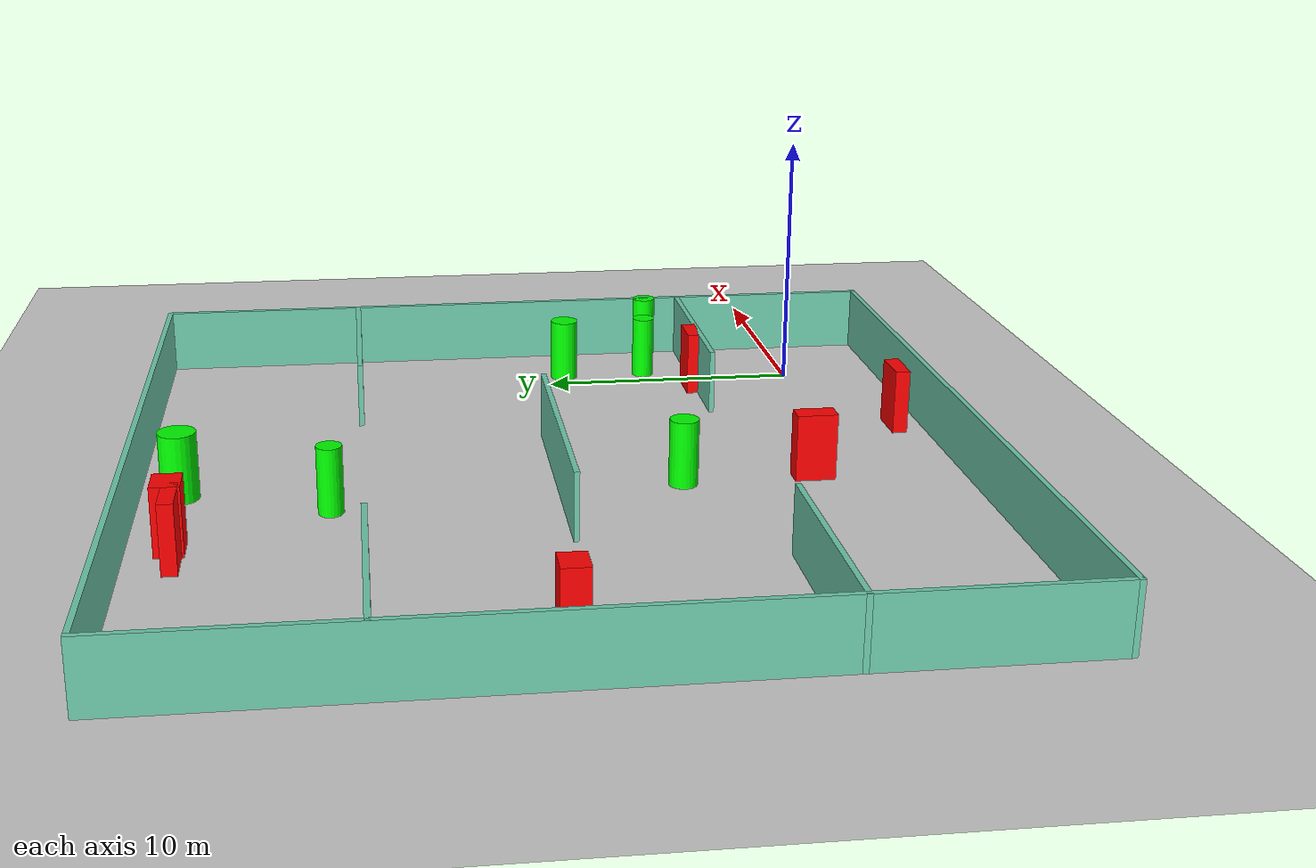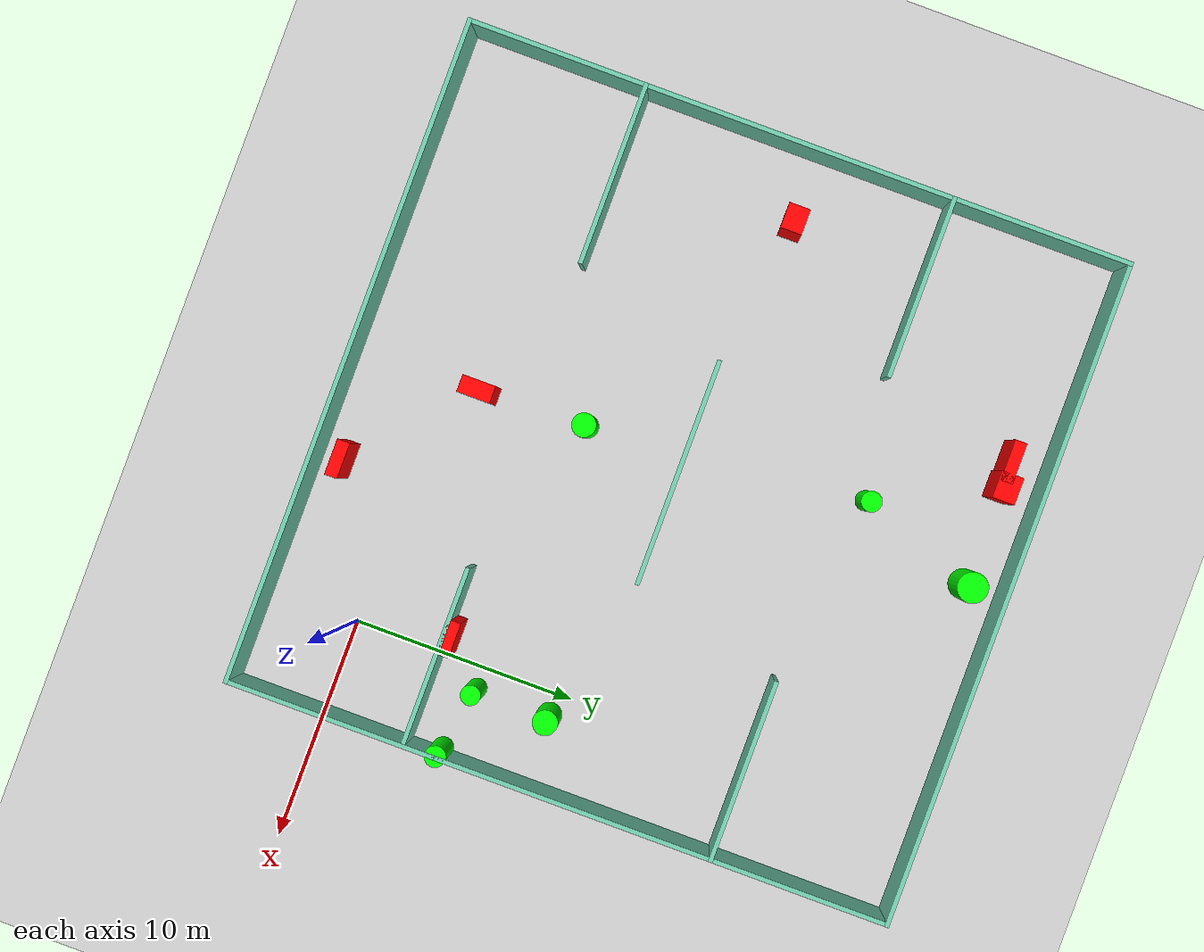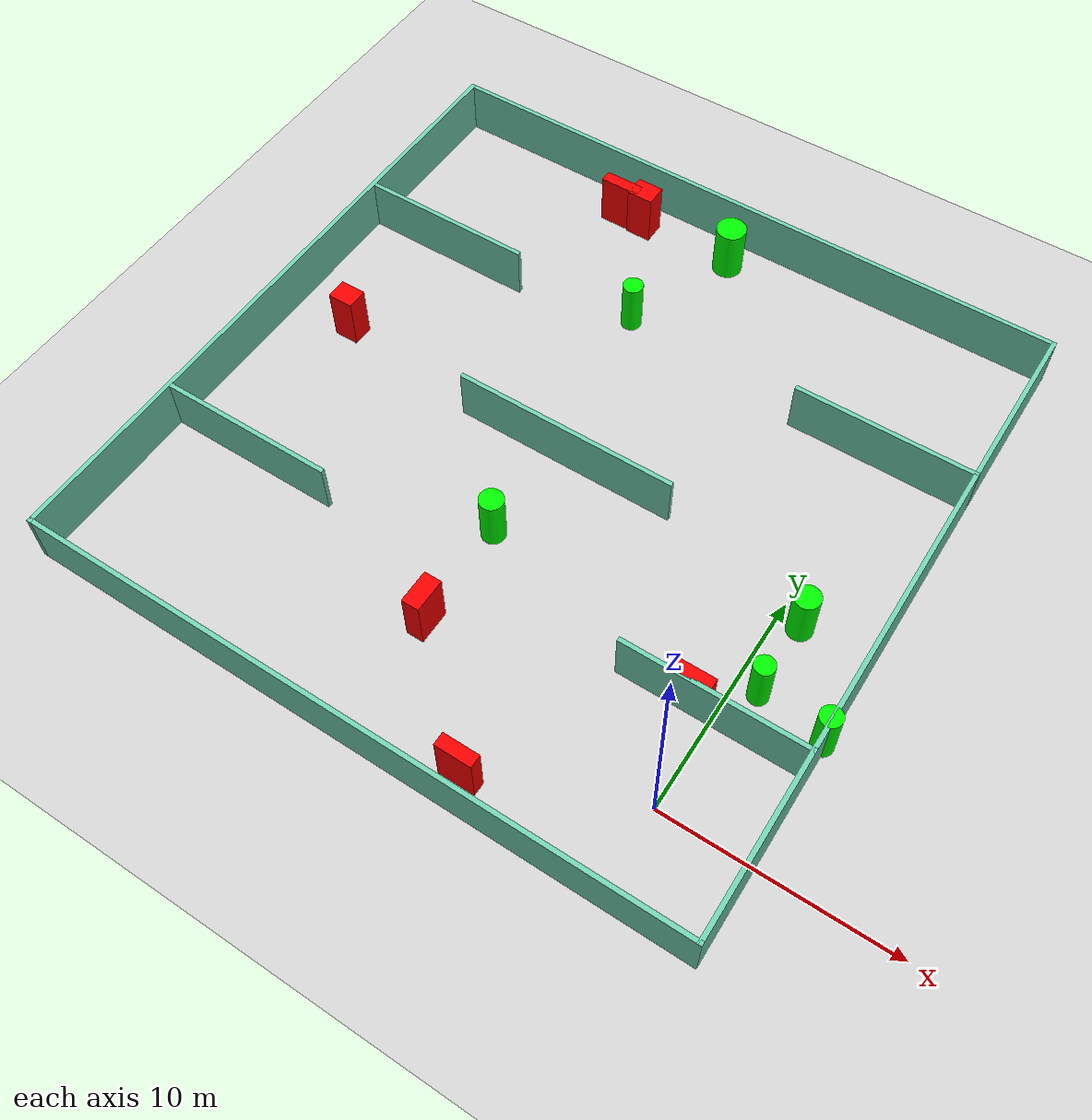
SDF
<sdf version="1.7">
 <world name="default">
  <light name="sun" type="directional">
   <pose>0 0 10 0 -0 0</pose>
   <diffuse>0.8 0.8 0.8 1</diffuse>
   <specular>0.2 0.2 0.2 1</specular>
   <attenuation>
    <range>1000</range>
    <constant>0.9</constant>
    <linear>0.01</linear>
    <quadratic>0.001</quadratic>
   </attenuation>
   <direction>-0.5 0.1 -0.9</direction>
   <spot><inner_angle>0</inner_angle><outer_angle>0</outer_angle><falloff>0</falloff></spot>
  </light>
  <model name="ground_plane">
   <static>1</static>
   <link name="link">
    <collision name="collision">
     <geometry><plane><normal>0 0 1</normal><size>100 100</size></plane></geometry>
     <surface>
      <contact><collide_bitmask>65535</collide_bitmask></contact>
      <friction><ode><mu>100</mu><mu2>50</mu2></ode></friction>
     </surface>
    </collision>
    <visual name="visual">
     <cast_shadows>0</cast_shadows>
     <geometry><plane><normal>0 0 1</normal><size>100 100</size></plane></geometry>
     <material>
      <script><uri>file://media/materials/scripts/gazebo.material</uri><name>Gazebo/Grey</name></script>
     </material>
    </visual>
   </link>
  </model>
  <gravity>0 0 -9.8</gravity>
  <magnetic_field>6e-06 2.3e-05 -4.2e-05</magnetic_field>
  <atmosphere type="adiabatic"/>
  <physics type="ode">
   <max_step_size>0.001</max_step_size>
   <real_time_factor>1</real_time_factor>
   <real_time_update_rate>1000</real_time_update_rate>
  </physics>
  <scene><ambient>0.4 0.4 0.4 1</ambient><background>0.7 0.7 0.7 1</background><shadows>1</shadows></scene>
  <spherical_coordinates>
   <surface_model>EARTH_WGS84</surface_model>
   <latitude_deg>0</latitude_deg>
   <longitude_deg>0</longitude_deg>
   <elevation>0</elevation>
   <heading_deg>0</heading_deg>
  </spherical_coordinates>
  <model name="my_base_walls">
   <link name="Wall_10">
    <collision name="Wall_10_Collision">
     <geometry><box><size>8.2 0.2 2.5</size></box></geometry>
     <pose>0 0 1.25 0 -0 0</pose>
    </collision>
    <visual name="Wall_10_Visual">
     <pose>0 0 1.25 0 -0 0</pose>
     <geometry><box><size>8.2 0.2 2.5</size></box></geometry>
     <material>
      <script><uri>file://media/materials/scripts/gazebo.material</uri><name>Gazebo/Grey</name></script>
      <ambient>0.435294 0.796078 0.67451 1</ambient>
     </material>
     <meta><layer>0</layer></meta>
    </visual>
    <pose>-11 -7 0 0 -0 0</pose>
   </link>
   <link name="Wall_12">
    <collision name="Wall_12_Collision">
     <geometry><box><size>8.2 0.2 2.5</size></box></geometry>
     <pose>0 0 1.25 0 -0 0</pose>
    </collision>
    <visual name="Wall_12_Visual">
     <pose>0 0 1.25 0 -0 0</pose>
     <geometry><box><size>8.2 0.2 2.5</size></box></geometry>
     <material>
      <script><uri>file://media/materials/scripts/gazebo.material</uri><name>Gazebo/Grey</name></script>
      <ambient>0.435294 0.796078 0.67451 1</ambient>
     </material>
     <meta><layer>0</layer></meta>
    </visual>
    <pose>-11 7 0 0 -0 0</pose>
   </link>
   <link name="Wall_14">
    <collision name="Wall_14_Collision">
     <geometry><box><size>8.2 0.2 2.5</size></box></geometry>
     <pose>0 0 1.25 0 -0 0</pose>
    </collision>
    <visual name="Wall_14_Visual">
     <pose>0 0 1.25 0 -0 0</pose>
     <geometry><box><size>8.2 0.2 2.5</size></box></geometry>
     <material>
      <script><uri>file://media/materials/scripts/gazebo.material</uri><name>Gazebo/Grey</name></script>
      <ambient>0.435294 0.796078 0.67451 1</ambient>
     </material>
     <meta><layer>0</layer></meta>
    </visual>
    <pose>11 7 0 0 -0 3.14159</pose>
   </link>
   <link name="Wall_16">
    <collision name="Wall_16_Collision">
     <geometry><box><size>10.2 0.2 2.5</size></box></geometry>
     <pose>0 0 1.25 0 -0 0</pose>
    </collision>
    <visual name="Wall_16_Visual">
     <pose>0 0 1.25 0 -0 0</pose>
     <geometry><box><size>10.2 0.2 2.5</size></box></geometry>
     <material>
      <script><uri>file://media/materials/scripts/gazebo.material</uri><name>Gazebo/Grey</name></script>
      <ambient>0.435294 0.796078 0.67451 1</ambient>
     </material>
     <meta><layer>0</layer></meta>
    </visual>
    <pose>0 0 0 0 -0 3.14159</pose>
   </link>
   <link name="Wall_2">
    <collision name="Wall_2_Collision">
     <geometry><box><size>30.2 0.2 2.5</size></box></geometry>
     <pose>0 0 1.25 0 -0 0</pose>
    </collision>
    <visual name="Wall_2_Visual">
     <pose>0 0 1.25 0 -0 0</pose>
     <geometry><box><size>30.2 0.2 2.5</size></box></geometry>
     <material>
      <script><uri>file://media/materials/scripts/gazebo.material</uri><name>Gazebo/Grey</name></script>
      <ambient>0.435294 0.796078 0.67451 1</ambient>
     </material>
     <meta><layer>0</layer></meta>
    </visual>
    <pose>0 -15 0 0 -0 3.14159</pose>
   </link>
   <link name="Wall_3">
    <collision name="Wall_3_Collision">
     <geometry><box><size>30.2 0.2 2.5</size></box></geometry>
     <pose>0 0 1.25 0 -0 0</pose>
    </collision>
    <visual name="Wall_3_Visual">
     <pose>0 0 1.25 0 -0 0</pose>
     <geometry><box><size>30.2 0.2 2.5</size></box></geometry>
     <material>
      <script><uri>file://media/materials/scripts/gazebo.material</uri><name>Gazebo/Grey</name></script>
      <ambient>0.435294 0.796078 0.67451 1</ambient>
     </material>
     <meta><layer>0</layer></meta>
    </visual>
    <pose>-15 0 0 0 -0 1.5708</pose>
   </link>
   <link name="Wall_4">
    <collision name="Wall_4_Collision">
     <geometry><box><size>30.2 0.2 2.5</size></box></geometry>
     <pose>0 0 1.25 0 -0 0</pose>
    </collision>
    <visual name="Wall_4_Visual">
     <pose>0 0 1.25 0 -0 0</pose>
     <geometry><box><size>30.2 0.2 2.5</size></box></geometry>
     <material>
      <script><uri>file://media/materials/scripts/gazebo.material</uri><name>Gazebo/Grey</name></script>
      <ambient>0.435294 0.796078 0.67451 1</ambient>
     </material>
     <meta><layer>0</layer></meta>
    </visual>
    <pose>0 15 0 0 -0 0</pose>
   </link>
   <link name="Wall_6">
    <collision name="Wall_6_Collision">
     <geometry><box><size>30.2 0.2 2.5</size></box></geometry>
     <pose>0 0 1.25 0 -0 0</pose>
    </collision>
    <visual name="Wall_6_Visual">
     <pose>0 0 1.25 0 -0 0</pose>
     <geometry><box><size>30.2 0.2 2.5</size></box></geometry>
     <material>
      <script><uri>file://media/materials/scripts/gazebo.material</uri><name>Gazebo/Grey</name></script>
      <ambient>0.435294 0.796078 0.67451 1</ambient>
     </material>
     <meta><layer>0</layer></meta>
    </visual>
    <pose>15 0 0 0 -0 1.5708</pose>
   </link>
   <link name="Wall_8">
    <collision name="Wall_8_Collision">
     <geometry><box><size>8.2 0.2 2.5</size></box></geometry>
     <pose>0 0 1.25 0 -0 0</pose>
    </collision>
    <visual name="Wall_8_Visual">
     <pose>0 0 1.25 0 -0 0</pose>
     <geometry><box><size>8.2 0.2 2.5</size></box></geometry>
     <material>
      <script><uri>file://media/materials/scripts/gazebo.material</uri><name>Gazebo/Grey</name></script>
      <ambient>0.435294 0.796078 0.67451 1</ambient>
     </material>
     <meta><layer>0</layer></meta>
    </visual>
    <pose>11 -7 0 0 -0 3.14159</pose>
   </link>
   <static>1</static>
   <pose>-11 11 0 0 -0 0</pose>
  </model>
  <model name="cylinder1">
   <static>1</static>
   <link name="link">
    <inertial>
     <mass>1</mass>
     <inertia><ixx>0.5</ixx><ixy>0</ixy><ixz>0</ixz><iyy>0.5</iyy><iyz>0</iyz><izz>1</izz></inertia>
    </inertial>
    <collision name="collision">
     <geometry><cylinder><radius>0.5549362027278298</radius><length>2.5</length></cylinder></geometry>
    </collision>
    <visual name="visual">
     <geometry><cylinder><radius>0.5549362027278298</radius><length>2.5</length></cylinder></geometry>
     <material>
      <ambient>0 1 0 1</ambient>
      <diffuse>0 1 0 1</diffuse>
      <specular>0.1 0.1 0.1 1</specular>
      <emissive>0 0 0 0</emissive>
     </material>
    </visual>
   </link>
   <pose>0.9615726954249908 9.360686404820465 1.25 0 0 0</pose>
  </model>
  <model name="cylinder2">
   <static>1</static>
   <link name="link">
    <inertial>
     <mass>1</mass>
     <inertia><ixx>0.5</ixx><ixy>0</ixy><ixz>0</ixz><iyy>0.5</iyy><iyz>0</iyz><izz>1</izz></inertia>
    </inertial>
    <collision name="collision">
     <geometry><cylinder><radius>0.4579362771024507</radius><length>2.5</length></cylinder></geometry>
    </collision>
    <visual name="visual">
     <geometry><cylinder><radius>0.4579362771024507</radius><length>2.5</length></cylinder></geometry>
     <material>
      <ambient>0 1 0 1</ambient>
      <diffuse>0 1 0 1</diffuse>
      <specular>0.1 0.1 0.1 1</specular>
      <emissive>0 0 0 0</emissive>
     </material>
    </visual>
   </link>
   <pose>-12.680521934013022 19.145859617787842 1.25 0 0 0</pose>
  </model>
  <model name="cylinder3">
   <static>1</static>
   <link name="link">
    <inertial>
     <mass>1</mass>
     <inertia><ixx>0.5</ixx><ixy>0</ixy><ixz>0</ixz><iyy>0.5</iyy><iyz>0</iyz><izz>1</izz></inertia>
    </inertial>
    <collision name="collision">
     <geometry><cylinder><radius>0.5345270949172443</radius><length>2.5</length></cylinder></geometry>
    </collision>
    <visual name="visual">
     <geometry><cylinder><radius>0.5345270949172443</radius><length>2.5</length></cylinder></geometry>
     <material>
      <ambient>0 1 0 1</ambient>
      <diffuse>0 1 0 1</diffuse>
      <specular>0.1 0.1 0.1 1</specular>
      <emissive>0 0 0 0</emissive>
     </material>
    </visual>
   </link>
   <pose>-11.50340091847524 6.526921586312147 1.25 0 0 0</pose>
  </model>
  <model name="cylinder4">
   <static>1</static>
   <link name="link">
    <inertial>
     <mass>1</mass>
     <inertia><ixx>0.5</ixx><ixy>0</ixy><ixz>0</ixz><iyy>0.5</iyy><iyz>0</iyz><izz>1</izz></inertia>
    </inertial>
    <collision name="collision">
     <geometry><cylinder><radius>0.44248297723657887</radius><length>2.5</length></cylinder></geometry>
    </collision>
    <visual name="visual">
     <geometry><cylinder><radius>0.44248297723657887</radius><length>2.5</length></cylinder></geometry>
     <material>
      <ambient>0 1 0 1</ambient>
      <diffuse>0 1 0 1</diffuse>
      <specular>0.1 0.1 0.1 1</specular>
      <emissive>0 0 0 0</emissive>
     </material>
    </visual>
   </link>
   <pose>0.9645890763361642 5.974822097450549 1.25 0 0 0</pose>
  </model>
  <model name="cylinder5">
   <static>1</static>
   <link name="link">
    <inertial>
     <mass>1</mass>
     <inertia><ixx>0.5</ixx><ixy>0</ixy><ixz>0</ixz><iyy>0.5</iyy><iyz>0</iyz><izz>1</izz></inertia>
    </inertial>
    <collision name="collision">
     <geometry><cylinder><radius>0.47224350086001593</radius><length>2.5</length></cylinder></geometry>
    </collision>
    <visual name="visual">
     <geometry><cylinder><radius>0.47224350086001593</radius><length>2.5</length></cylinder></geometry>
     <material>
      <ambient>0 1 0 1</ambient>
      <diffuse>0 1 0 1</diffuse>
      <specular>0.1 0.1 0.1 1</specular>
      <emissive>0 0 0 0</emissive>
     </material>
    </visual>
   </link>
   <pose>3.926858419004841 5.472154636271538 1.25 0 0 0</pose>
  </model>
  <model name="cylinder6">
   <static>1</static>
   <link name="link">
    <inertial>
     <mass>1</mass>
     <inertia><ixx>0.5</ixx><ixy>0</ixy><ixz>0</ixz><iyy>0.5</iyy><iyz>0</iyz><izz>1</izz></inertia>
    </inertial>
    <collision name="collision">
     <geometry><cylinder><radius>0.6836853156217444</radius><length>2.5</length></cylinder></geometry>
    </collision>
    <visual name="visual">
     <geometry><cylinder><radius>0.6836853156217444</radius><length>2.5</length></cylinder></geometry>
     <material>
      <ambient>0 1 0 1</ambient>
      <diffuse>0 1 0 1</diffuse>
      <specular>0.1 0.1 0.1 1</specular>
      <emissive>0 0 0 0</emissive>
     </material>
    </visual>
   </link>
   <pose>-10.728590286980692 24.45387969642165 1.25 0 0 0</pose>
  </model>
  <model name="box1">
   <static>1</static>
   <link name="link">
    <inertial>
     <mass>1</mass>
     <inertia><ixx>0.083</ixx><ixy>0</ixy><ixz>0</ixz><iyy>0.083</iyy><iyz>0</iyz><izz>0.083</izz></inertia>
    </inertial>
    <collision name="collision">
     <geometry><box><size>1.8366170105255528 0.5412360726489452 2.5</size></box></geometry>
    </collision>
    <visual name="visual">
     <geometry><box><size>1.8366170105255528 0.5412360726489452 2.5</size></box></geometry>
     <material>
      <ambient>1 0 0 1</ambient>
      <diffuse>1 0 0 1</diffuse>
      <specular>0.1 0.1 0.1 1</specular>
      <emissive>0 0 0 0</emissive>
     </material>
    </visual>
    <sensor name="my_contact" type="contact">
     <contact><collision>box_collision</collision><topic>__default_topic__</topic></contact>
    </sensor>
   </link>
   <pose>-16.366409035865438 24.24668943922392 1.25 0 0 0</pose>
  </model>
  <model name="box2">
   <static>1</static>
   <link name="link">
    <inertial>
     <mass>1</mass>
     <inertia><ixx>0.083</ixx><ixy>0</ixy><ixz>0</ixz><iyy>0.083</iyy><iyz>0</iyz><izz>0.083</izz></inertia>
    </inertial>
    <collision name="collision">
     <geometry><box><size>1.1460586452004327 0.9606547270521195 2.5</size></box></geometry>
    </collision>
    <visual name="visual">
     <geometry><box><size>1.1460586452004327 0.9606547270521195 2.5</size></box></geometry>
     <material>
      <ambient>1 0 0 1</ambient>
      <diffuse>1 0 0 1</diffuse>
      <specular>0.1 0.1 0.1 1</specular>
      <emissive>0 0 0 0</emissive>
     </material>
    </visual>
    <sensor name="my_contact" type="contact">
     <contact><collision>box_collision</collision><topic>__default_topic__</topic></contact>
    </sensor>
   </link>
   <pose>-22.868467662480835 11.944133922728248 1.25 0 0 0</pose>
  </model>
  <model name="box3">
   <static>1</static>
   <link name="link">
    <inertial>
     <mass>1</mass>
     <inertia><ixx>0.083</ixx><ixy>0</ixy><ixz>0</ixz><iyy>0.083</iyy><iyz>0</iyz><izz>0.083</izz></inertia>
    </inertial>
    <collision name="collision">
     <geometry><box><size>0.7885910874319053 1.4907313194600011 2.5</size></box></geometry>
    </collision>
    <visual name="visual">
     <geometry><box><size>0.7885910874319053 1.4907313194600011 2.5</size></box></geometry>
     <material>
      <ambient>1 0 0 1</ambient>
      <diffuse>1 0 0 1</diffuse>
      <specular>0.1 0.1 0.1 1</specular>
      <emissive>0 0 0 0</emissive>
     </material>
    </visual>
    <sensor name="my_contact" type="contact">
     <contact><collision>box_collision</collision><topic>__default_topic__</topic></contact>
    </sensor>
   </link>
   <pose>-11.360054453803633 1.6923068605113407 1.25 0 0 0</pose>
  </model>
  <model name="box4">
   <static>1</static>
   <link name="link">
    <inertial>
     <mass>1</mass>
     <inertia><ixx>0.083</ixx><ixy>0</ixy><ixz>0</ixz><iyy>0.083</iyy><iyz>0</iyz><izz>0.083</izz></inertia>
    </inertial>
    <collision name="collision">
     <geometry><box><size>1.5685224253888295 0.5478672638838207 2.5</size></box></geometry>
    </collision>
    <visual name="visual">
     <geometry><box><size>1.5685224253888295 0.5478672638838207 2.5</size></box></geometry>
     <material>
      <ambient>1 0 0 1</ambient>
      <diffuse>1 0 0 1</diffuse>
      <specular>0.1 0.1 0.1 1</specular>
      <emissive>0 0 0 0</emissive>
     </material>
    </visual>
    <sensor name="my_contact" type="contact">
     <contact><collision>box_collision</collision><topic>__default_topic__</topic></contact>
    </sensor>
   </link>
   <pose>-0.9754930434281412 4.271412269324728 1.25 0 0 0</pose>
  </model>
  <model name="box5">
   <static>1</static>
   <link name="link">
    <inertial>
     <mass>1</mass>
     <inertia><ixx>0.083</ixx><ixy>0</ixy><ixz>0</ixz><iyy>0.083</iyy><iyz>0</iyz><izz>0.083</izz></inertia>
    </inertial>
    <collision name="collision">
     <geometry><box><size>1.6167743293275714 0.568420199071017 2.5</size></box></geometry>
    </collision>
    <visual name="visual">
     <geometry><box><size>1.6167743293275714 0.568420199071017 2.5</size></box></geometry>
     <material>
      <ambient>1 0 0 1</ambient>
      <diffuse>1 0 0 1</diffuse>
      <specular>0.1 0.1 0.1 1</specular>
      <emissive>0 0 0 0</emissive>
     </material>
    </visual>
    <sensor name="my_contact" type="contact">
     <contact><collision>box_collision</collision><topic>__default_topic__</topic></contact>
    </sensor>
   </link>
   <pose>-6.52536542130199 -2.8282950014268518 1.25 0 0 0</pose>
  </model>
  <model name="box6">
   <static>1</static>
   <link name="link">
    <inertial>
     <mass>1</mass>
     <inertia><ixx>0.083</ixx><ixy>0</ixy><ixz>0</ixz><iyy>0.083</iyy><iyz>0</iyz><izz>0.083</izz></inertia>
    </inertial>
    <collision name="collision">
     <geometry><box><size>1.2212841815591915 1.0101076566051872 2.5</size></box></geometry>
    </collision>
    <visual name="visual">
     <geometry><box><size>1.2212841815591915 1.0101076566051872 2.5</size></box></geometry>
     <material>
      <ambient>1 0 0 1</ambient>
      <diffuse>1 0 0 1</diffuse>
      <specular>0.1 0.1 0.1 1</specular>
      <emissive>0 0 0 0</emissive>
     </material>
    </visual>
    <sensor name="my_contact" type="contact">
     <contact><collision>box_collision</collision><topic>__default_topic__</topic></contact>
    </sensor>
   </link>
   <pose>-15.24357218545708 24.39821511652042 1.25 0 0 0</pose>
  </model>
 </world>
</sdf>
